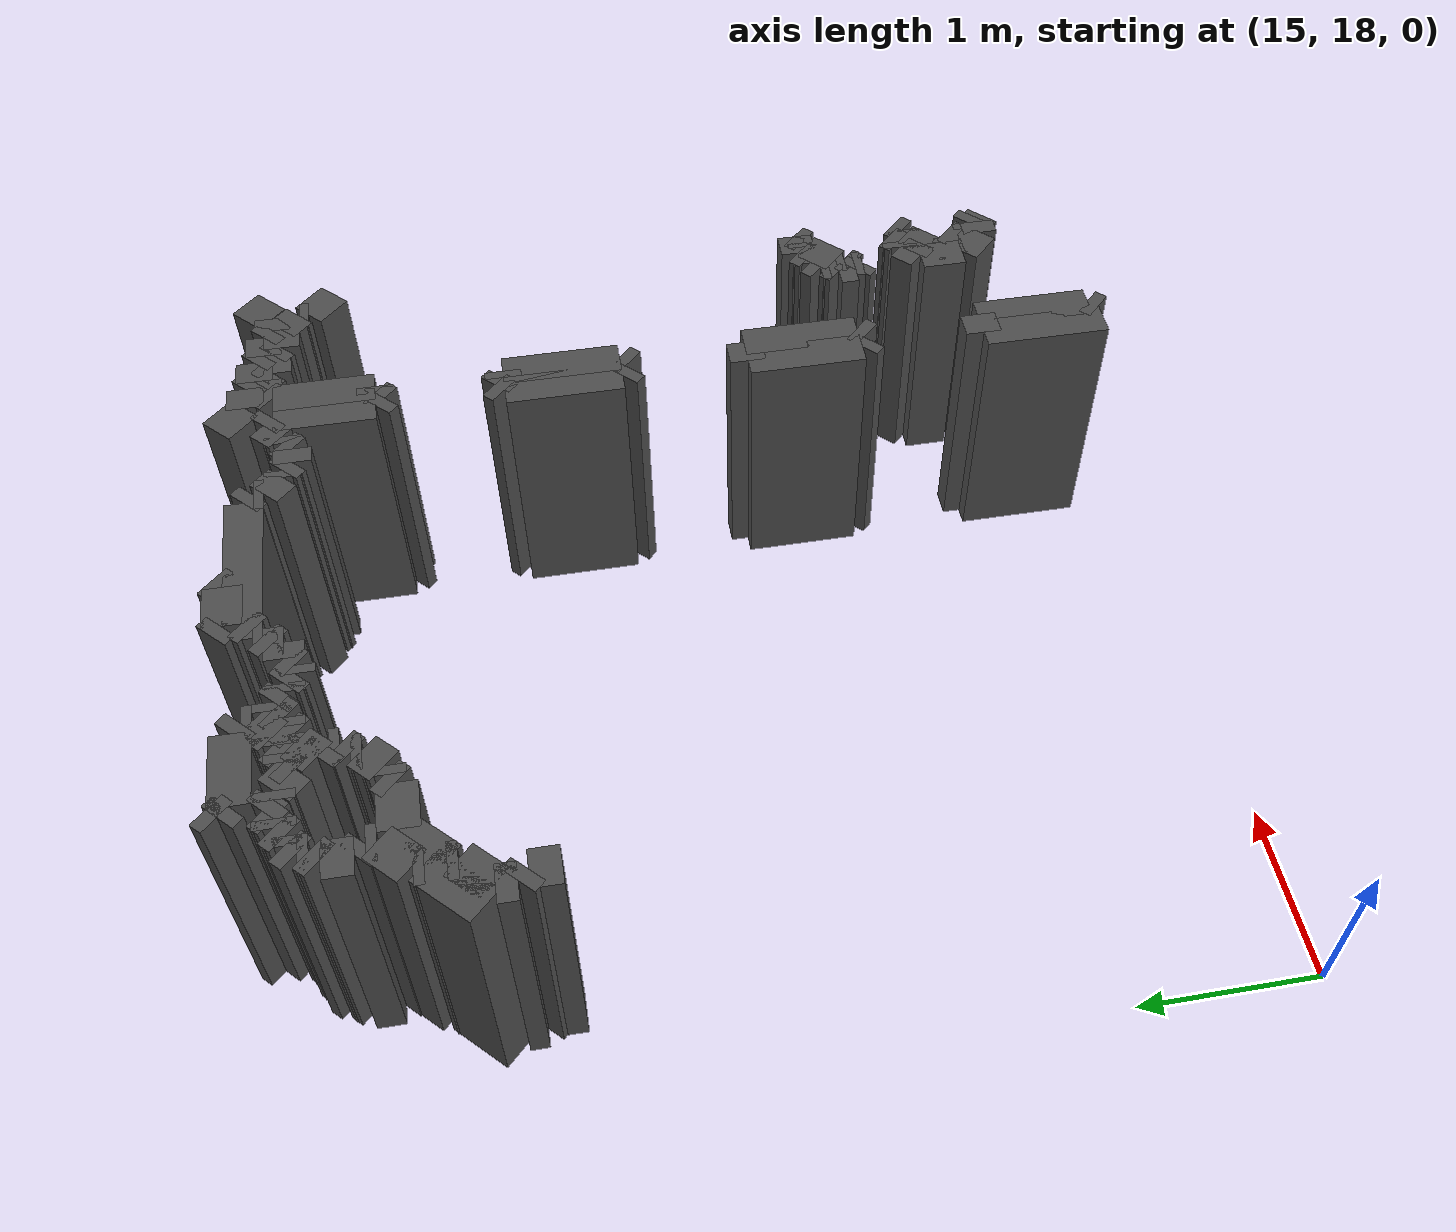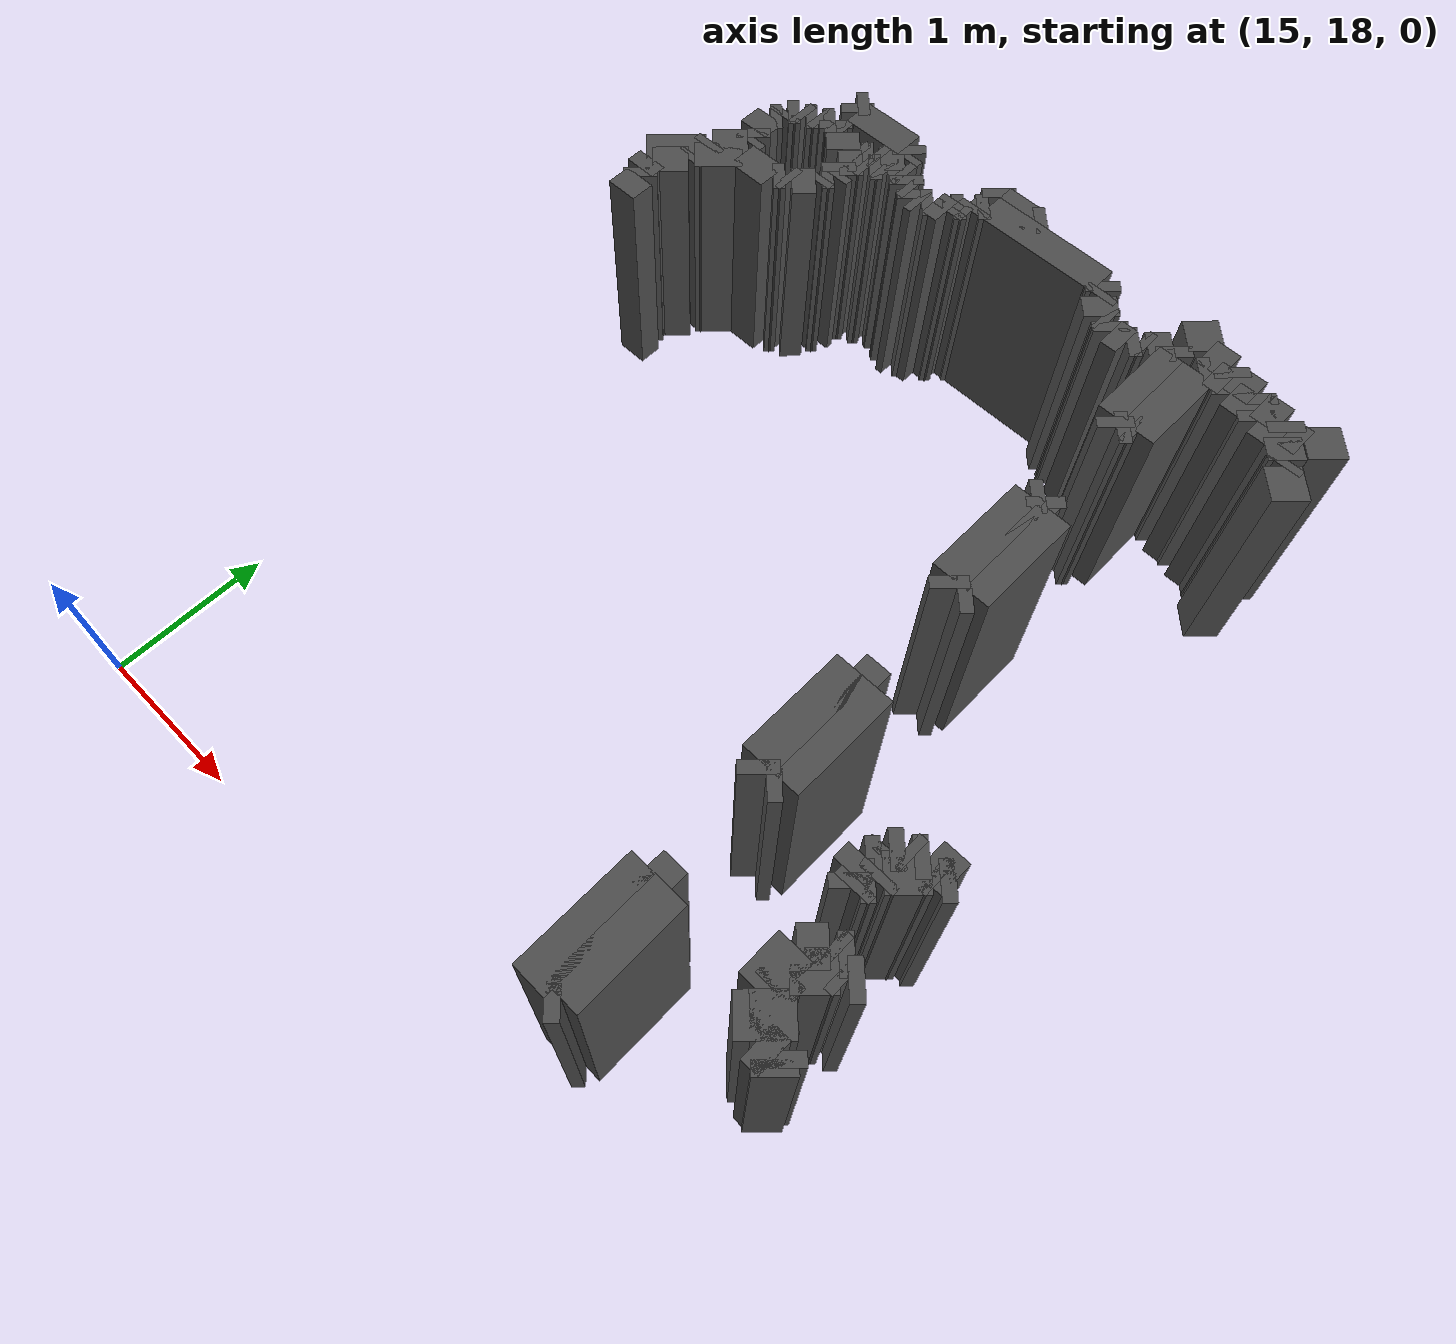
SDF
<sdf version="1.9">
 <model name="generated_walls">
  <static>true</static>
  <link name="wall_86_0">
   <pose>18.475 21.075 0.75 0 0 2.356</pose>
   <collision name="collision"><geometry><box><size>0.071 0.2 1.5</size></box></geometry></collision>
   <visual name="visual">
    <geometry><box><size>0.071 0.2 1.5</size></box></geometry>
    <material><ambient>0.3 0.3 0.3 1</ambient></material>
   </visual>
  </link>
  <link name="wall_86_1">
   <pose>18.450 21.425 0.75 0 0 1.571</pose>
   <collision name="collision"><geometry><box><size>0.650 0.2 1.5</size></box></geometry></collision>
   <visual name="visual">
    <geometry><box><size>0.650 0.2 1.5</size></box></geometry>
    <material><ambient>0.3 0.3 0.3 1</ambient></material>
   </visual>
  </link>
  <link name="wall_86_2">
   <pose>18.475 21.775 0.75 0 0 0.785</pose>
   <collision name="collision"><geometry><box><size>0.071 0.2 1.5</size></box></geometry></collision>
   <visual name="visual">
    <geometry><box><size>0.071 0.2 1.5</size></box></geometry>
    <material><ambient>0.3 0.3 0.3 1</ambient></material>
   </visual>
  </link>
  <link name="wall_86_3">
   <pose>18.525 21.775 0.75 0 0 -0.785</pose>
   <collision name="collision"><geometry><box><size>0.071 0.2 1.5</size></box></geometry></collision>
   <visual name="visual">
    <geometry><box><size>0.071 0.2 1.5</size></box></geometry>
    <material><ambient>0.3 0.3 0.3 1</ambient></material>
   </visual>
  </link>
  <link name="wall_86_4">
   <pose>18.575 21.750 0.75 0 0 0.000</pose>
   <collision name="collision"><geometry><box><size>0.050 0.2 1.5</size></box></geometry></collision>
   <visual name="visual">
    <geometry><box><size>0.050 0.2 1.5</size></box></geometry>
    <material><ambient>0.3 0.3 0.3 1</ambient></material>
   </visual>
  </link>
  <link name="wall_86_5">
   <pose>18.600 21.425 0.75 0 0 -1.571</pose>
   <collision name="collision"><geometry><box><size>0.650 0.2 1.5</size></box></geometry></collision>
   <visual name="visual">
    <geometry><box><size>0.650 0.2 1.5</size></box></geometry>
    <material><ambient>0.3 0.3 0.3 1</ambient></material>
   </visual>
  </link>
  <link name="wall_86_6">
   <pose>18.575 21.075 0.75 0 0 -2.356</pose>
   <collision name="collision"><geometry><box><size>0.071 0.2 1.5</size></box></geometry></collision>
   <visual name="visual">
    <geometry><box><size>0.071 0.2 1.5</size></box></geometry>
    <material><ambient>0.3 0.3 0.3 1</ambient></material>
   </visual>
  </link>
  <link name="wall_96_0">
   <pose>18.475 19.725 0.75 0 0 2.356</pose>
   <collision name="collision"><geometry><box><size>0.071 0.2 1.5</size></box></geometry></collision>
   <visual name="visual">
    <geometry><box><size>0.071 0.2 1.5</size></box></geometry>
    <material><ambient>0.3 0.3 0.3 1</ambient></material>
   </visual>
  </link>
  <link name="wall_96_1">
   <pose>18.450 20.075 0.75 0 0 1.571</pose>
   <collision name="collision"><geometry><box><size>0.650 0.2 1.5</size></box></geometry></collision>
   <visual name="visual">
    <geometry><box><size>0.650 0.2 1.5</size></box></geometry>
    <material><ambient>0.3 0.3 0.3 1</ambient></material>
   </visual>
  </link>
  <link name="wall_96_2">
   <pose>18.525 20.400 0.75 0 0 0.000</pose>
   <collision name="collision"><geometry><box><size>0.150 0.2 1.5</size></box></geometry></collision>
   <visual name="visual">
    <geometry><box><size>0.150 0.2 1.5</size></box></geometry>
    <material><ambient>0.3 0.3 0.3 1</ambient></material>
   </visual>
  </link>
  <link name="wall_96_3">
   <pose>18.600 20.075 0.75 0 0 -1.571</pose>
   <collision name="collision"><geometry><box><size>0.650 0.2 1.5</size></box></geometry></collision>
   <visual name="visual">
    <geometry><box><size>0.650 0.2 1.5</size></box></geometry>
    <material><ambient>0.3 0.3 0.3 1</ambient></material>
   </visual>
  </link>
  <link name="wall_96_4">
   <pose>18.575 19.725 0.75 0 0 -2.356</pose>
   <collision name="collision"><geometry><box><size>0.071 0.2 1.5</size></box></geometry></collision>
   <visual name="visual">
    <geometry><box><size>0.071 0.2 1.5</size></box></geometry>
    <material><ambient>0.3 0.3 0.3 1</ambient></material>
   </visual>
  </link>
  <link name="wall_111_0">
   <pose>19.425 18.825 0.75 0 0 2.356</pose>
   <collision name="collision"><geometry><box><size>0.071 0.2 1.5</size></box></geometry></collision>
   <visual name="visual">
    <geometry><box><size>0.071 0.2 1.5</size></box></geometry>
    <material><ambient>0.3 0.3 0.3 1</ambient></material>
   </visual>
  </link>
  <link name="wall_111_1">
   <pose>19.350 18.850 0.75 0 0 3.142</pose>
   <collision name="collision"><geometry><box><size>0.100 0.2 1.5</size></box></geometry></collision>
   <visual name="visual">
    <geometry><box><size>0.100 0.2 1.5</size></box></geometry>
    <material><ambient>0.3 0.3 0.3 1</ambient></material>
   </visual>
  </link>
  <link name="wall_111_2">
   <pose>19.225 18.925 0.75 0 0 2.356</pose>
   <collision name="collision"><geometry><box><size>0.212 0.2 1.5</size></box></geometry></collision>
   <visual name="visual">
    <geometry><box><size>0.212 0.2 1.5</size></box></geometry>
    <material><ambient>0.3 0.3 0.3 1</ambient></material>
   </visual>
  </link>
  <link name="wall_111_3">
   <pose>19.150 19.125 0.75 0 0 1.571</pose>
   <collision name="collision"><geometry><box><size>0.250 0.2 1.5</size></box></geometry></collision>
   <visual name="visual">
    <geometry><box><size>0.250 0.2 1.5</size></box></geometry>
    <material><ambient>0.3 0.3 0.3 1</ambient></material>
   </visual>
  </link>
  <link name="wall_111_4">
   <pose>19.200 19.300 0.75 0 0 0.785</pose>
   <collision name="collision"><geometry><box><size>0.141 0.2 1.5</size></box></geometry></collision>
   <visual name="visual">
    <geometry><box><size>0.141 0.2 1.5</size></box></geometry>
    <material><ambient>0.3 0.3 0.3 1</ambient></material>
   </visual>
  </link>
  <link name="wall_111_5">
   <pose>19.275 19.350 0.75 0 0 0.000</pose>
   <collision name="collision"><geometry><box><size>0.050 0.2 1.5</size></box></geometry></collision>
   <visual name="visual">
    <geometry><box><size>0.050 0.2 1.5</size></box></geometry>
    <material><ambient>0.3 0.3 0.3 1</ambient></material>
   </visual>
  </link>
  <link name="wall_111_6">
   <pose>19.325 19.375 0.75 0 0 0.785</pose>
   <collision name="collision"><geometry><box><size>0.071 0.2 1.5</size></box></geometry></collision>
   <visual name="visual">
    <geometry><box><size>0.071 0.2 1.5</size></box></geometry>
    <material><ambient>0.3 0.3 0.3 1</ambient></material>
   </visual>
  </link>
  <link name="wall_111_18">
   <pose>19.425 19.925 0.75 0 0 -2.356</pose>
   <collision name="collision"><geometry><box><size>0.071 0.2 1.5</size></box></geometry></collision>
   <visual name="visual">
    <geometry><box><size>0.071 0.2 1.5</size></box></geometry>
    <material><ambient>0.3 0.3 0.3 1</ambient></material>
   </visual>
  </link>
  <link name="wall_111_19">
   <pose>19.375 19.900 0.75 0 0 3.142</pose>
   <collision name="collision"><geometry><box><size>0.050 0.2 1.5</size></box></geometry></collision>
   <visual name="visual">
    <geometry><box><size>0.050 0.2 1.5</size></box></geometry>
    <material><ambient>0.3 0.3 0.3 1</ambient></material>
   </visual>
  </link>
  <link name="wall_111_20">
   <pose>19.275 19.825 0.75 0 0 -2.356</pose>
   <collision name="collision"><geometry><box><size>0.212 0.2 1.5</size></box></geometry></collision>
   <visual name="visual">
    <geometry><box><size>0.212 0.2 1.5</size></box></geometry>
    <material><ambient>0.3 0.3 0.3 1</ambient></material>
   </visual>
  </link>
  <link name="wall_111_21">
   <pose>19.200 19.725 0.75 0 0 -1.571</pose>
   <collision name="collision"><geometry><box><size>0.050 0.2 1.5</size></box></geometry></collision>
   <visual name="visual">
    <geometry><box><size>0.050 0.2 1.5</size></box></geometry>
    <material><ambient>0.3 0.3 0.3 1</ambient></material>
   </visual>
  </link>
  <link name="wall_111_22">
   <pose>19.175 19.675 0.75 0 0 -2.356</pose>
   <collision name="collision"><geometry><box><size>0.071 0.2 1.5</size></box></geometry></collision>
   <visual name="visual">
    <geometry><box><size>0.071 0.2 1.5</size></box></geometry>
    <material><ambient>0.3 0.3 0.3 1</ambient></material>
   </visual>
  </link>
  <link name="wall_111_23">
   <pose>19.150 19.625 0.75 0 0 -1.571</pose>
   <collision name="collision"><geometry><box><size>0.050 0.2 1.5</size></box></geometry></collision>
   <visual name="visual">
    <geometry><box><size>0.050 0.2 1.5</size></box></geometry>
    <material><ambient>0.3 0.3 0.3 1</ambient></material>
   </visual>
  </link>
  <link name="wall_111_24">
   <pose>19.125 19.625 0.75 0 0 2.356</pose>
   <collision name="collision"><geometry><box><size>0.071 0.2 1.5</size></box></geometry></collision>
   <visual name="visual">
    <geometry><box><size>0.071 0.2 1.5</size></box></geometry>
    <material><ambient>0.3 0.3 0.3 1</ambient></material>
   </visual>
  </link>
  <link name="wall_111_25">
   <pose>19.100 19.700 0.75 0 0 1.571</pose>
   <collision name="collision"><geometry><box><size>0.100 0.2 1.5</size></box></geometry></collision>
   <visual name="visual">
    <geometry><box><size>0.100 0.2 1.5</size></box></geometry>
    <material><ambient>0.3 0.3 0.3 1</ambient></material>
   </visual>
  </link>
  <link name="wall_111_26">
   <pose>19.125 19.775 0.75 0 0 0.785</pose>
   <collision name="collision"><geometry><box><size>0.071 0.2 1.5</size></box></geometry></collision>
   <visual name="visual">
    <geometry><box><size>0.071 0.2 1.5</size></box></geometry>
    <material><ambient>0.3 0.3 0.3 1</ambient></material>
   </visual>
  </link>
  <link name="wall_111_27">
   <pose>19.150 19.825 0.75 0 0 1.571</pose>
   <collision name="collision"><geometry><box><size>0.050 0.2 1.5</size></box></geometry></collision>
   <visual name="visual">
    <geometry><box><size>0.050 0.2 1.5</size></box></geometry>
    <material><ambient>0.3 0.3 0.3 1</ambient></material>
   </visual>
  </link>
  <link name="wall_111_28">
   <pose>19.175 19.875 0.75 0 0 0.785</pose>
   <collision name="collision"><geometry><box><size>0.071 0.2 1.5</size></box></geometry></collision>
   <visual name="visual">
    <geometry><box><size>0.071 0.2 1.5</size></box></geometry>
    <material><ambient>0.3 0.3 0.3 1</ambient></material>
   </visual>
  </link>
  <link name="wall_111_29">
   <pose>19.225 19.900 0.75 0 0 0.000</pose>
   <collision name="collision"><geometry><box><size>0.050 0.2 1.5</size></box></geometry></collision>
   <visual name="visual">
    <geometry><box><size>0.050 0.2 1.5</size></box></geometry>
    <material><ambient>0.3 0.3 0.3 1</ambient></material>
   </visual>
  </link>
  <link name="wall_111_30">
   <pose>19.275 19.925 0.75 0 0 0.785</pose>
   <collision name="collision"><geometry><box><size>0.071 0.2 1.5</size></box></geometry></collision>
   <visual name="visual">
    <geometry><box><size>0.071 0.2 1.5</size></box></geometry>
    <material><ambient>0.3 0.3 0.3 1</ambient></material>
   </visual>
  </link>
  <link name="wall_111_31">
   <pose>19.375 19.950 0.75 0 0 0.000</pose>
   <collision name="collision"><geometry><box><size>0.150 0.2 1.5</size></box></geometry></collision>
   <visual name="visual">
    <geometry><box><size>0.150 0.2 1.5</size></box></geometry>
    <material><ambient>0.3 0.3 0.3 1</ambient></material>
   </visual>
  </link>
  <link name="wall_111_47">
   <pose>19.425 19.325 0.75 0 0 -2.356</pose>
   <collision name="collision"><geometry><box><size>0.071 0.2 1.5</size></box></geometry></collision>
   <visual name="visual">
    <geometry><box><size>0.071 0.2 1.5</size></box></geometry>
    <material><ambient>0.3 0.3 0.3 1</ambient></material>
   </visual>
  </link>
  <link name="wall_111_48">
   <pose>19.375 19.300 0.75 0 0 3.142</pose>
   <collision name="collision"><geometry><box><size>0.050 0.2 1.5</size></box></geometry></collision>
   <visual name="visual">
    <geometry><box><size>0.050 0.2 1.5</size></box></geometry>
    <material><ambient>0.3 0.3 0.3 1</ambient></material>
   </visual>
  </link>
  <link name="wall_111_49">
   <pose>19.275 19.225 0.75 0 0 -2.356</pose>
   <collision name="collision"><geometry><box><size>0.212 0.2 1.5</size></box></geometry></collision>
   <visual name="visual">
    <geometry><box><size>0.212 0.2 1.5</size></box></geometry>
    <material><ambient>0.3 0.3 0.3 1</ambient></material>
   </visual>
  </link>
  <link name="wall_111_50">
   <pose>19.200 19.100 0.75 0 0 -1.571</pose>
   <collision name="collision"><geometry><box><size>0.100 0.2 1.5</size></box></geometry></collision>
   <visual name="visual">
    <geometry><box><size>0.100 0.2 1.5</size></box></geometry>
    <material><ambient>0.3 0.3 0.3 1</ambient></material>
   </visual>
  </link>
  <link name="wall_111_51">
   <pose>19.275 18.975 0.75 0 0 -0.785</pose>
   <collision name="collision"><geometry><box><size>0.212 0.2 1.5</size></box></geometry></collision>
   <visual name="visual">
    <geometry><box><size>0.212 0.2 1.5</size></box></geometry>
    <material><ambient>0.3 0.3 0.3 1</ambient></material>
   </visual>
  </link>
  <link name="wall_111_52">
   <pose>19.375 18.900 0.75 0 0 0.000</pose>
   <collision name="collision"><geometry><box><size>0.050 0.2 1.5</size></box></geometry></collision>
   <visual name="visual">
    <geometry><box><size>0.050 0.2 1.5</size></box></geometry>
    <material><ambient>0.3 0.3 0.3 1</ambient></material>
   </visual>
  </link>
  <link name="wall_111_53">
   <pose>19.425 18.875 0.75 0 0 -0.785</pose>
   <collision name="collision"><geometry><box><size>0.071 0.2 1.5</size></box></geometry></collision>
   <visual name="visual">
    <geometry><box><size>0.071 0.2 1.5</size></box></geometry>
    <material><ambient>0.3 0.3 0.3 1</ambient></material>
   </visual>
  </link>
  <link name="wall_113_0">
   <pose>18.450 18.700 0.75 0 0 1.571</pose>
   <collision name="collision"><geometry><box><size>0.700 0.2 1.5</size></box></geometry></collision>
   <visual name="visual">
    <geometry><box><size>0.700 0.2 1.5</size></box></geometry>
    <material><ambient>0.3 0.3 0.3 1</ambient></material>
   </visual>
  </link>
  <link name="wall_113_1">
   <pose>18.525 19.050 0.75 0 0 0.000</pose>
   <collision name="collision"><geometry><box><size>0.150 0.2 1.5</size></box></geometry></collision>
   <visual name="visual">
    <geometry><box><size>0.150 0.2 1.5</size></box></geometry>
    <material><ambient>0.3 0.3 0.3 1</ambient></material>
   </visual>
  </link>
  <link name="wall_113_2">
   <pose>18.600 18.725 0.75 0 0 -1.571</pose>
   <collision name="collision"><geometry><box><size>0.650 0.2 1.5</size></box></geometry></collision>
   <visual name="visual">
    <geometry><box><size>0.650 0.2 1.5</size></box></geometry>
    <material><ambient>0.3 0.3 0.3 1</ambient></material>
   </visual>
  </link>
  <link name="wall_113_3">
   <pose>18.575 18.375 0.75 0 0 -2.356</pose>
   <collision name="collision"><geometry><box><size>0.071 0.2 1.5</size></box></geometry></collision>
   <visual name="visual">
    <geometry><box><size>0.071 0.2 1.5</size></box></geometry>
    <material><ambient>0.3 0.3 0.3 1</ambient></material>
   </visual>
  </link>
  <link name="wall_161_1841">
   <pose>15.425 22.225 0.75 0 0 0.785</pose>
   <collision name="collision"><geometry><box><size>0.354 0.2 1.5</size></box></geometry></collision>
   <visual name="visual">
    <geometry><box><size>0.354 0.2 1.5</size></box></geometry>
    <material><ambient>0.3 0.3 0.3 1</ambient></material>
   </visual>
  </link>
  <link name="wall_161_1842">
   <pose>15.550 22.375 0.75 0 0 1.571</pose>
   <collision name="collision"><geometry><box><size>0.050 0.2 1.5</size></box></geometry></collision>
   <visual name="visual">
    <geometry><box><size>0.050 0.2 1.5</size></box></geometry>
    <material><ambient>0.3 0.3 0.3 1</ambient></material>
   </visual>
  </link>
  <link name="wall_161_1843">
   <pose>15.625 22.475 0.75 0 0 0.785</pose>
   <collision name="collision"><geometry><box><size>0.212 0.2 1.5</size></box></geometry></collision>
   <visual name="visual">
    <geometry><box><size>0.212 0.2 1.5</size></box></geometry>
    <material><ambient>0.3 0.3 0.3 1</ambient></material>
   </visual>
  </link>
  <link name="wall_161_1844">
   <pose>15.700 22.575 0.75 0 0 1.571</pose>
   <collision name="collision"><geometry><box><size>0.050 0.2 1.5</size></box></geometry></collision>
   <visual name="visual">
    <geometry><box><size>0.050 0.2 1.5</size></box></geometry>
    <material><ambient>0.3 0.3 0.3 1</ambient></material>
   </visual>
  </link>
  <link name="wall_161_1845">
   <pose>15.675 22.625 0.75 0 0 2.356</pose>
   <collision name="collision"><geometry><box><size>0.071 0.2 1.5</size></box></geometry></collision>
   <visual name="visual">
    <geometry><box><size>0.071 0.2 1.5</size></box></geometry>
    <material><ambient>0.3 0.3 0.3 1</ambient></material>
   </visual>
  </link>
  <link name="wall_161_1846">
   <pose>15.650 22.725 0.75 0 0 1.571</pose>
   <collision name="collision"><geometry><box><size>0.150 0.2 1.5</size></box></geometry></collision>
   <visual name="visual">
    <geometry><box><size>0.150 0.2 1.5</size></box></geometry>
    <material><ambient>0.3 0.3 0.3 1</ambient></material>
   </visual>
  </link>
  <link name="wall_161_1847">
   <pose>15.675 22.825 0.75 0 0 0.785</pose>
   <collision name="collision"><geometry><box><size>0.071 0.2 1.5</size></box></geometry></collision>
   <visual name="visual">
    <geometry><box><size>0.071 0.2 1.5</size></box></geometry>
    <material><ambient>0.3 0.3 0.3 1</ambient></material>
   </visual>
  </link>
  <link name="wall_161_1848">
   <pose>15.700 22.875 0.75 0 0 1.571</pose>
   <collision name="collision"><geometry><box><size>0.050 0.2 1.5</size></box></geometry></collision>
   <visual name="visual">
    <geometry><box><size>0.050 0.2 1.5</size></box></geometry>
    <material><ambient>0.3 0.3 0.3 1</ambient></material>
   </visual>
  </link>
  <link name="wall_161_1849">
   <pose>15.725 22.925 0.75 0 0 0.785</pose>
   <collision name="collision"><geometry><box><size>0.071 0.2 1.5</size></box></geometry></collision>
   <visual name="visual">
    <geometry><box><size>0.071 0.2 1.5</size></box></geometry>
    <material><ambient>0.3 0.3 0.3 1</ambient></material>
   </visual>
  </link>
  <link name="wall_161_1850">
   <pose>15.775 22.950 0.75 0 0 0.000</pose>
   <collision name="collision"><geometry><box><size>0.050 0.2 1.5</size></box></geometry></collision>
   <visual name="visual">
    <geometry><box><size>0.050 0.2 1.5</size></box></geometry>
    <material><ambient>0.3 0.3 0.3 1</ambient></material>
   </visual>
  </link>
  <link name="wall_161_1851">
   <pose>15.825 22.975 0.75 0 0 0.785</pose>
   <collision name="collision"><geometry><box><size>0.071 0.2 1.5</size></box></geometry></collision>
   <visual name="visual">
    <geometry><box><size>0.071 0.2 1.5</size></box></geometry>
    <material><ambient>0.3 0.3 0.3 1</ambient></material>
   </visual>
  </link>
  <link name="wall_161_1852">
   <pose>15.875 23.000 0.75 0 0 0.000</pose>
   <collision name="collision"><geometry><box><size>0.050 0.2 1.5</size></box></geometry></collision>
   <visual name="visual">
    <geometry><box><size>0.050 0.2 1.5</size></box></geometry>
    <material><ambient>0.3 0.3 0.3 1</ambient></material>
   </visual>
  </link>
  <link name="wall_161_1853">
   <pose>15.925 23.025 0.75 0 0 0.785</pose>
   <collision name="collision"><geometry><box><size>0.071 0.2 1.5</size></box></geometry></collision>
   <visual name="visual">
    <geometry><box><size>0.071 0.2 1.5</size></box></geometry>
    <material><ambient>0.3 0.3 0.3 1</ambient></material>
   </visual>
  </link>
  <link name="wall_161_1854">
   <pose>15.975 23.025 0.75 0 0 -0.785</pose>
   <collision name="collision"><geometry><box><size>0.071 0.2 1.5</size></box></geometry></collision>
   <visual name="visual">
    <geometry><box><size>0.071 0.2 1.5</size></box></geometry>
    <material><ambient>0.3 0.3 0.3 1</ambient></material>
   </visual>
  </link>
  <link name="wall_161_1855">
   <pose>16.025 23.000 0.75 0 0 0.000</pose>
   <collision name="collision"><geometry><box><size>0.050 0.2 1.5</size></box></geometry></collision>
   <visual name="visual">
    <geometry><box><size>0.050 0.2 1.5</size></box></geometry>
    <material><ambient>0.3 0.3 0.3 1</ambient></material>
   </visual>
  </link>
  <link name="wall_161_1856">
   <pose>16.100 22.950 0.75 0 0 -0.785</pose>
   <collision name="collision"><geometry><box><size>0.141 0.2 1.5</size></box></geometry></collision>
   <visual name="visual">
    <geometry><box><size>0.141 0.2 1.5</size></box></geometry>
    <material><ambient>0.3 0.3 0.3 1</ambient></material>
   </visual>
  </link>
  <link name="wall_161_1857">
   <pose>16.175 22.925 0.75 0 0 0.785</pose>
   <collision name="collision"><geometry><box><size>0.071 0.2 1.5</size></box></geometry></collision>
   <visual name="visual">
    <geometry><box><size>0.071 0.2 1.5</size></box></geometry>
    <material><ambient>0.3 0.3 0.3 1</ambient></material>
   </visual>
  </link>
  <link name="wall_161_1858">
   <pose>16.225 22.950 0.75 0 0 0.000</pose>
   <collision name="collision"><geometry><box><size>0.050 0.2 1.5</size></box></geometry></collision>
   <visual name="visual">
    <geometry><box><size>0.050 0.2 1.5</size></box></geometry>
    <material><ambient>0.3 0.3 0.3 1</ambient></material>
   </visual>
  </link>
  <link name="wall_161_1859">
   <pose>16.275 22.975 0.75 0 0 0.785</pose>
   <collision name="collision"><geometry><box><size>0.071 0.2 1.5</size></box></geometry></collision>
   <visual name="visual">
    <geometry><box><size>0.071 0.2 1.5</size></box></geometry>
    <material><ambient>0.3 0.3 0.3 1</ambient></material>
   </visual>
  </link>
  <link name="wall_161_1860">
   <pose>16.325 23.000 0.75 0 0 0.000</pose>
   <collision name="collision"><geometry><box><size>0.050 0.2 1.5</size></box></geometry></collision>
   <visual name="visual">
    <geometry><box><size>0.050 0.2 1.5</size></box></geometry>
    <material><ambient>0.3 0.3 0.3 1</ambient></material>
   </visual>
  </link>
  <link name="wall_161_1861">
   <pose>16.400 23.050 0.75 0 0 0.785</pose>
   <collision name="collision"><geometry><box><size>0.141 0.2 1.5</size></box></geometry></collision>
   <visual name="visual">
    <geometry><box><size>0.141 0.2 1.5</size></box></geometry>
    <material><ambient>0.3 0.3 0.3 1</ambient></material>
   </visual>
  </link>
  <link name="wall_161_1862">
   <pose>16.450 23.125 0.75 0 0 1.571</pose>
   <collision name="collision"><geometry><box><size>0.050 0.2 1.5</size></box></geometry></collision>
   <visual name="visual">
    <geometry><box><size>0.050 0.2 1.5</size></box></geometry>
    <material><ambient>0.3 0.3 0.3 1</ambient></material>
   </visual>
  </link>
  <link name="wall_161_1863">
   <pose>16.425 23.175 0.75 0 0 2.356</pose>
   <collision name="collision"><geometry><box><size>0.071 0.2 1.5</size></box></geometry></collision>
   <visual name="visual">
    <geometry><box><size>0.071 0.2 1.5</size></box></geometry>
    <material><ambient>0.3 0.3 0.3 1</ambient></material>
   </visual>
  </link>
  <link name="wall_161_1864">
   <pose>16.200 23.200 0.75 0 0 3.142</pose>
   <collision name="collision"><geometry><box><size>0.400 0.2 1.5</size></box></geometry></collision>
   <visual name="visual">
    <geometry><box><size>0.400 0.2 1.5</size></box></geometry>
    <material><ambient>0.3 0.3 0.3 1</ambient></material>
   </visual>
  </link>
  <link name="wall_161_1865">
   <pose>15.975 23.225 0.75 0 0 2.356</pose>
   <collision name="collision"><geometry><box><size>0.071 0.2 1.5</size></box></geometry></collision>
   <visual name="visual">
    <geometry><box><size>0.071 0.2 1.5</size></box></geometry>
    <material><ambient>0.3 0.3 0.3 1</ambient></material>
   </visual>
  </link>
  <link name="wall_161_1866">
   <pose>15.975 23.275 0.75 0 0 0.785</pose>
   <collision name="collision"><geometry><box><size>0.071 0.2 1.5</size></box></geometry></collision>
   <visual name="visual">
    <geometry><box><size>0.071 0.2 1.5</size></box></geometry>
    <material><ambient>0.3 0.3 0.3 1</ambient></material>
   </visual>
  </link>
  <link name="wall_161_1879">
   <pose>17.025 23.275 0.75 0 0 -0.785</pose>
   <collision name="collision"><geometry><box><size>0.071 0.2 1.5</size></box></geometry></collision>
   <visual name="visual">
    <geometry><box><size>0.071 0.2 1.5</size></box></geometry>
    <material><ambient>0.3 0.3 0.3 1</ambient></material>
   </visual>
  </link>
  <link name="wall_161_1880">
   <pose>17.175 23.250 0.75 0 0 0.000</pose>
   <collision name="collision"><geometry><box><size>0.250 0.2 1.5</size></box></geometry></collision>
   <visual name="visual">
    <geometry><box><size>0.250 0.2 1.5</size></box></geometry>
    <material><ambient>0.3 0.3 0.3 1</ambient></material>
   </visual>
  </link>
  <link name="wall_161_1881">
   <pose>17.325 23.275 0.75 0 0 0.785</pose>
   <collision name="collision"><geometry><box><size>0.071 0.2 1.5</size></box></geometry></collision>
   <visual name="visual">
    <geometry><box><size>0.071 0.2 1.5</size></box></geometry>
    <material><ambient>0.3 0.3 0.3 1</ambient></material>
   </visual>
  </link>
  <link name="wall_161_1893">
   <pose>18.475 23.225 0.75 0 0 -0.785</pose>
   <collision name="collision"><geometry><box><size>0.212 0.2 1.5</size></box></geometry></collision>
   <visual name="visual">
    <geometry><box><size>0.212 0.2 1.5</size></box></geometry>
    <material><ambient>0.3 0.3 0.3 1</ambient></material>
   </visual>
  </link>
  <link name="wall_161_1894">
   <pose>18.625 23.150 0.75 0 0 0.000</pose>
   <collision name="collision"><geometry><box><size>0.150 0.2 1.5</size></box></geometry></collision>
   <visual name="visual">
    <geometry><box><size>0.150 0.2 1.5</size></box></geometry>
    <material><ambient>0.3 0.3 0.3 1</ambient></material>
   </visual>
  </link>
  <link name="wall_161_1895">
   <pose>18.725 23.125 0.75 0 0 -0.785</pose>
   <collision name="collision"><geometry><box><size>0.071 0.2 1.5</size></box></geometry></collision>
   <visual name="visual">
    <geometry><box><size>0.071 0.2 1.5</size></box></geometry>
    <material><ambient>0.3 0.3 0.3 1</ambient></material>
   </visual>
  </link>
  <link name="wall_161_1896">
   <pose>18.825 23.100 0.75 0 0 0.000</pose>
   <collision name="collision"><geometry><box><size>0.150 0.2 1.5</size></box></geometry></collision>
   <visual name="visual">
    <geometry><box><size>0.150 0.2 1.5</size></box></geometry>
    <material><ambient>0.3 0.3 0.3 1</ambient></material>
   </visual>
  </link>
  <link name="wall_161_1897">
   <pose>18.925 23.075 0.75 0 0 -0.785</pose>
   <collision name="collision"><geometry><box><size>0.071 0.2 1.5</size></box></geometry></collision>
   <visual name="visual">
    <geometry><box><size>0.071 0.2 1.5</size></box></geometry>
    <material><ambient>0.3 0.3 0.3 1</ambient></material>
   </visual>
  </link>
  <link name="wall_161_1898">
   <pose>19.025 23.050 0.75 0 0 0.000</pose>
   <collision name="collision"><geometry><box><size>0.150 0.2 1.5</size></box></geometry></collision>
   <visual name="visual">
    <geometry><box><size>0.150 0.2 1.5</size></box></geometry>
    <material><ambient>0.3 0.3 0.3 1</ambient></material>
   </visual>
  </link>
  <link name="wall_161_1899">
   <pose>19.125 23.025 0.75 0 0 -0.785</pose>
   <collision name="collision"><geometry><box><size>0.071 0.2 1.5</size></box></geometry></collision>
   <visual name="visual">
    <geometry><box><size>0.071 0.2 1.5</size></box></geometry>
    <material><ambient>0.3 0.3 0.3 1</ambient></material>
   </visual>
  </link>
  <link name="wall_161_1900">
   <pose>19.200 23.000 0.75 0 0 0.000</pose>
   <collision name="collision"><geometry><box><size>0.100 0.2 1.5</size></box></geometry></collision>
   <visual name="visual">
    <geometry><box><size>0.100 0.2 1.5</size></box></geometry>
    <material><ambient>0.3 0.3 0.3 1</ambient></material>
   </visual>
  </link>
  <link name="wall_161_1901">
   <pose>19.325 23.075 0.75 0 0 0.785</pose>
   <collision name="collision"><geometry><box><size>0.212 0.2 1.5</size></box></geometry></collision>
   <visual name="visual">
    <geometry><box><size>0.212 0.2 1.5</size></box></geometry>
    <material><ambient>0.3 0.3 0.3 1</ambient></material>
   </visual>
  </link>
  <link name="wall_161_2288">
   <pose>19.325 22.725 0.75 0 0 2.356</pose>
   <collision name="collision"><geometry><box><size>0.212 0.2 1.5</size></box></geometry></collision>
   <visual name="visual">
    <geometry><box><size>0.212 0.2 1.5</size></box></geometry>
    <material><ambient>0.3 0.3 0.3 1</ambient></material>
   </visual>
  </link>
  <link name="wall_161_2289">
   <pose>19.250 22.825 0.75 0 0 1.571</pose>
   <collision name="collision"><geometry><box><size>0.050 0.2 1.5</size></box></geometry></collision>
   <visual name="visual">
    <geometry><box><size>0.050 0.2 1.5</size></box></geometry>
    <material><ambient>0.3 0.3 0.3 1</ambient></material>
   </visual>
  </link>
  <link name="wall_161_2290">
   <pose>19.200 22.900 0.75 0 0 2.356</pose>
   <collision name="collision"><geometry><box><size>0.141 0.2 1.5</size></box></geometry></collision>
   <visual name="visual">
    <geometry><box><size>0.141 0.2 1.5</size></box></geometry>
    <material><ambient>0.3 0.3 0.3 1</ambient></material>
   </visual>
  </link>
  <link name="wall_161_2291">
   <pose>19.075 22.950 0.75 0 0 3.142</pose>
   <collision name="collision"><geometry><box><size>0.150 0.2 1.5</size></box></geometry></collision>
   <visual name="visual">
    <geometry><box><size>0.150 0.2 1.5</size></box></geometry>
    <material><ambient>0.3 0.3 0.3 1</ambient></material>
   </visual>
  </link>
  <link name="wall_161_2292">
   <pose>18.975 22.975 0.75 0 0 2.356</pose>
   <collision name="collision"><geometry><box><size>0.071 0.2 1.5</size></box></geometry></collision>
   <visual name="visual">
    <geometry><box><size>0.071 0.2 1.5</size></box></geometry>
    <material><ambient>0.3 0.3 0.3 1</ambient></material>
   </visual>
  </link>
  <link name="wall_161_2293">
   <pose>18.875 23.000 0.75 0 0 3.142</pose>
   <collision name="collision"><geometry><box><size>0.150 0.2 1.5</size></box></geometry></collision>
   <visual name="visual">
    <geometry><box><size>0.150 0.2 1.5</size></box></geometry>
    <material><ambient>0.3 0.3 0.3 1</ambient></material>
   </visual>
  </link>
  <link name="wall_161_2294">
   <pose>18.775 23.025 0.75 0 0 2.356</pose>
   <collision name="collision"><geometry><box><size>0.071 0.2 1.5</size></box></geometry></collision>
   <visual name="visual">
    <geometry><box><size>0.071 0.2 1.5</size></box></geometry>
    <material><ambient>0.3 0.3 0.3 1</ambient></material>
   </visual>
  </link>
  <link name="wall_161_2295">
   <pose>18.700 23.050 0.75 0 0 3.142</pose>
   <collision name="collision"><geometry><box><size>0.100 0.2 1.5</size></box></geometry></collision>
   <visual name="visual">
    <geometry><box><size>0.100 0.2 1.5</size></box></geometry>
    <material><ambient>0.3 0.3 0.3 1</ambient></material>
   </visual>
  </link>
  <link name="wall_161_2296">
   <pose>18.625 23.025 0.75 0 0 -2.356</pose>
   <collision name="collision"><geometry><box><size>0.071 0.2 1.5</size></box></geometry></collision>
   <visual name="visual">
    <geometry><box><size>0.071 0.2 1.5</size></box></geometry>
    <material><ambient>0.3 0.3 0.3 1</ambient></material>
   </visual>
  </link>
  <link name="wall_161_2297">
   <pose>18.600 22.725 0.75 0 0 -1.571</pose>
   <collision name="collision"><geometry><box><size>0.550 0.2 1.5</size></box></geometry></collision>
   <visual name="visual">
    <geometry><box><size>0.550 0.2 1.5</size></box></geometry>
    <material><ambient>0.3 0.3 0.3 1</ambient></material>
   </visual>
  </link>
  <link name="wall_161_2298">
   <pose>18.575 22.450 0.75 0 0 3.142</pose>
   <collision name="collision"><geometry><box><size>0.050 0.2 1.5</size></box></geometry></collision>
   <visual name="visual">
    <geometry><box><size>0.050 0.2 1.5</size></box></geometry>
    <material><ambient>0.3 0.3 0.3 1</ambient></material>
   </visual>
  </link>
  <link name="wall_161_2299">
   <pose>18.525 22.425 0.75 0 0 -2.356</pose>
   <collision name="collision"><geometry><box><size>0.071 0.2 1.5</size></box></geometry></collision>
   <visual name="visual">
    <geometry><box><size>0.071 0.2 1.5</size></box></geometry>
    <material><ambient>0.3 0.3 0.3 1</ambient></material>
   </visual>
  </link>
  <link name="wall_161_2300">
   <pose>18.475 22.425 0.75 0 0 2.356</pose>
   <collision name="collision"><geometry><box><size>0.071 0.2 1.5</size></box></geometry></collision>
   <visual name="visual">
    <geometry><box><size>0.071 0.2 1.5</size></box></geometry>
    <material><ambient>0.3 0.3 0.3 1</ambient></material>
   </visual>
  </link>
  <link name="wall_161_2301">
   <pose>18.450 22.725 0.75 0 0 1.571</pose>
   <collision name="collision"><geometry><box><size>0.550 0.2 1.5</size></box></geometry></collision>
   <visual name="visual">
    <geometry><box><size>0.550 0.2 1.5</size></box></geometry>
    <material><ambient>0.3 0.3 0.3 1</ambient></material>
   </visual>
  </link>
  <link name="wall_161_2302">
   <pose>18.425 23.025 0.75 0 0 2.356</pose>
   <collision name="collision"><geometry><box><size>0.071 0.2 1.5</size></box></geometry></collision>
   <visual name="visual">
    <geometry><box><size>0.071 0.2 1.5</size></box></geometry>
    <material><ambient>0.3 0.3 0.3 1</ambient></material>
   </visual>
  </link>
  <link name="wall_161_2303">
   <pose>18.350 23.000 0.75 0 0 -2.356</pose>
   <collision name="collision"><geometry><box><size>0.141 0.2 1.5</size></box></geometry></collision>
   <visual name="visual">
    <geometry><box><size>0.141 0.2 1.5</size></box></geometry>
    <material><ambient>0.3 0.3 0.3 1</ambient></material>
   </visual>
  </link>
  <link name="wall_161_2304">
   <pose>18.275 22.950 0.75 0 0 3.142</pose>
   <collision name="collision"><geometry><box><size>0.050 0.2 1.5</size></box></geometry></collision>
   <visual name="visual">
    <geometry><box><size>0.050 0.2 1.5</size></box></geometry>
    <material><ambient>0.3 0.3 0.3 1</ambient></material>
   </visual>
  </link>
  <link name="wall_161_2305">
   <pose>18.225 22.925 0.75 0 0 -2.356</pose>
   <collision name="collision"><geometry><box><size>0.071 0.2 1.5</size></box></geometry></collision>
   <visual name="visual">
    <geometry><box><size>0.071 0.2 1.5</size></box></geometry>
    <material><ambient>0.3 0.3 0.3 1</ambient></material>
   </visual>
  </link>
  <link name="wall_161_2306">
   <pose>18.150 22.900 0.75 0 0 3.142</pose>
   <collision name="collision"><geometry><box><size>0.100 0.2 1.5</size></box></geometry></collision>
   <visual name="visual">
    <geometry><box><size>0.100 0.2 1.5</size></box></geometry>
    <material><ambient>0.3 0.3 0.3 1</ambient></material>
   </visual>
  </link>
  <link name="wall_161_2307">
   <pose>18.075 22.925 0.75 0 0 2.356</pose>
   <collision name="collision"><geometry><box><size>0.071 0.2 1.5</size></box></geometry></collision>
   <visual name="visual">
    <geometry><box><size>0.071 0.2 1.5</size></box></geometry>
    <material><ambient>0.3 0.3 0.3 1</ambient></material>
   </visual>
  </link>
  <link name="wall_161_2308">
   <pose>18.025 22.950 0.75 0 0 3.142</pose>
   <collision name="collision"><geometry><box><size>0.050 0.2 1.5</size></box></geometry></collision>
   <visual name="visual">
    <geometry><box><size>0.050 0.2 1.5</size></box></geometry>
    <material><ambient>0.3 0.3 0.3 1</ambient></material>
   </visual>
  </link>
  <link name="wall_161_2309">
   <pose>17.950 23.000 0.75 0 0 2.356</pose>
   <collision name="collision"><geometry><box><size>0.141 0.2 1.5</size></box></geometry></collision>
   <visual name="visual">
    <geometry><box><size>0.141 0.2 1.5</size></box></geometry>
    <material><ambient>0.3 0.3 0.3 1</ambient></material>
   </visual>
  </link>
  <link name="wall_161_2310">
   <pose>17.900 23.075 0.75 0 0 1.571</pose>
   <collision name="collision"><geometry><box><size>0.050 0.2 1.5</size></box></geometry></collision>
   <visual name="visual">
    <geometry><box><size>0.050 0.2 1.5</size></box></geometry>
    <material><ambient>0.3 0.3 0.3 1</ambient></material>
   </visual>
  </link>
  <link name="wall_161_2311">
   <pose>17.875 23.125 0.75 0 0 2.356</pose>
   <collision name="collision"><geometry><box><size>0.071 0.2 1.5</size></box></geometry></collision>
   <visual name="visual">
    <geometry><box><size>0.071 0.2 1.5</size></box></geometry>
    <material><ambient>0.3 0.3 0.3 1</ambient></material>
   </visual>
  </link>
  <link name="wall_161_2312">
   <pose>17.450 23.150 0.75 0 0 3.142</pose>
   <collision name="collision"><geometry><box><size>0.800 0.2 1.5</size></box></geometry></collision>
   <visual name="visual">
    <geometry><box><size>0.800 0.2 1.5</size></box></geometry>
    <material><ambient>0.3 0.3 0.3 1</ambient></material>
   </visual>
  </link>
  <link name="wall_161_2313">
   <pose>17.025 23.125 0.75 0 0 -2.356</pose>
   <collision name="collision"><geometry><box><size>0.071 0.2 1.5</size></box></geometry></collision>
   <visual name="visual">
    <geometry><box><size>0.071 0.2 1.5</size></box></geometry>
    <material><ambient>0.3 0.3 0.3 1</ambient></material>
   </visual>
  </link>
  <link name="wall_161_2314">
   <pose>17.000 23.075 0.75 0 0 -1.571</pose>
   <collision name="collision"><geometry><box><size>0.050 0.2 1.5</size></box></geometry></collision>
   <visual name="visual">
    <geometry><box><size>0.050 0.2 1.5</size></box></geometry>
    <material><ambient>0.3 0.3 0.3 1</ambient></material>
   </visual>
  </link>
  <link name="wall_161_2315">
   <pose>16.975 23.050 0.75 0 0 3.142</pose>
   <collision name="collision"><geometry><box><size>0.050 0.2 1.5</size></box></geometry></collision>
   <visual name="visual">
    <geometry><box><size>0.050 0.2 1.5</size></box></geometry>
    <material><ambient>0.3 0.3 0.3 1</ambient></material>
   </visual>
  </link>
  <link name="wall_161_2316">
   <pose>16.925 23.025 0.75 0 0 -2.356</pose>
   <collision name="collision"><geometry><box><size>0.071 0.2 1.5</size></box></geometry></collision>
   <visual name="visual">
    <geometry><box><size>0.071 0.2 1.5</size></box></geometry>
    <material><ambient>0.3 0.3 0.3 1</ambient></material>
   </visual>
  </link>
  <link name="wall_161_2317">
   <pose>16.900 22.975 0.75 0 0 -1.571</pose>
   <collision name="collision"><geometry><box><size>0.050 0.2 1.5</size></box></geometry></collision>
   <visual name="visual">
    <geometry><box><size>0.050 0.2 1.5</size></box></geometry>
    <material><ambient>0.3 0.3 0.3 1</ambient></material>
   </visual>
  </link>
  <link name="wall_161_2318">
   <pose>16.850 22.950 0.75 0 0 3.142</pose>
   <collision name="collision"><geometry><box><size>0.100 0.2 1.5</size></box></geometry></collision>
   <visual name="visual">
    <geometry><box><size>0.100 0.2 1.5</size></box></geometry>
    <material><ambient>0.3 0.3 0.3 1</ambient></material>
   </visual>
  </link>
  <link name="wall_161_2319">
   <pose>16.775 22.925 0.75 0 0 -2.356</pose>
   <collision name="collision"><geometry><box><size>0.071 0.2 1.5</size></box></geometry></collision>
   <visual name="visual">
    <geometry><box><size>0.071 0.2 1.5</size></box></geometry>
    <material><ambient>0.3 0.3 0.3 1</ambient></material>
   </visual>
  </link>
  <link name="wall_161_2320">
   <pose>16.725 22.900 0.75 0 0 3.142</pose>
   <collision name="collision"><geometry><box><size>0.050 0.2 1.5</size></box></geometry></collision>
   <visual name="visual">
    <geometry><box><size>0.050 0.2 1.5</size></box></geometry>
    <material><ambient>0.3 0.3 0.3 1</ambient></material>
   </visual>
  </link>
  <link name="wall_161_2321">
   <pose>16.675 22.925 0.75 0 0 2.356</pose>
   <collision name="collision"><geometry><box><size>0.071 0.2 1.5</size></box></geometry></collision>
   <visual name="visual">
    <geometry><box><size>0.071 0.2 1.5</size></box></geometry>
    <material><ambient>0.3 0.3 0.3 1</ambient></material>
   </visual>
  </link>
  <link name="wall_161_2322">
   <pose>16.625 22.950 0.75 0 0 3.142</pose>
   <collision name="collision"><geometry><box><size>0.050 0.2 1.5</size></box></geometry></collision>
   <visual name="visual">
    <geometry><box><size>0.050 0.2 1.5</size></box></geometry>
    <material><ambient>0.3 0.3 0.3 1</ambient></material>
   </visual>
  </link>
  <link name="wall_161_2323">
   <pose>16.575 22.975 0.75 0 0 2.356</pose>
   <collision name="collision"><geometry><box><size>0.071 0.2 1.5</size></box></geometry></collision>
   <visual name="visual">
    <geometry><box><size>0.071 0.2 1.5</size></box></geometry>
    <material><ambient>0.3 0.3 0.3 1</ambient></material>
   </visual>
  </link>
  <link name="wall_161_2324">
   <pose>16.525 23.000 0.75 0 0 3.142</pose>
   <collision name="collision"><geometry><box><size>0.050 0.2 1.5</size></box></geometry></collision>
   <visual name="visual">
    <geometry><box><size>0.050 0.2 1.5</size></box></geometry>
    <material><ambient>0.3 0.3 0.3 1</ambient></material>
   </visual>
  </link>
  <link name="wall_161_2325">
   <pose>16.475 22.975 0.75 0 0 -2.356</pose>
   <collision name="collision"><geometry><box><size>0.071 0.2 1.5</size></box></geometry></collision>
   <visual name="visual">
    <geometry><box><size>0.071 0.2 1.5</size></box></geometry>
    <material><ambient>0.3 0.3 0.3 1</ambient></material>
   </visual>
  </link>
  <link name="wall_161_2326">
   <pose>16.425 22.950 0.75 0 0 3.142</pose>
   <collision name="collision"><geometry><box><size>0.050 0.2 1.5</size></box></geometry></collision>
   <visual name="visual">
    <geometry><box><size>0.050 0.2 1.5</size></box></geometry>
    <material><ambient>0.3 0.3 0.3 1</ambient></material>
   </visual>
  </link>
  <link name="wall_161_2327">
   <pose>16.375 22.925 0.75 0 0 -2.356</pose>
   <collision name="collision"><geometry><box><size>0.071 0.2 1.5</size></box></geometry></collision>
   <visual name="visual">
    <geometry><box><size>0.071 0.2 1.5</size></box></geometry>
    <material><ambient>0.3 0.3 0.3 1</ambient></material>
   </visual>
  </link>
  <link name="wall_161_2328">
   <pose>16.325 22.900 0.75 0 0 3.142</pose>
   <collision name="collision"><geometry><box><size>0.050 0.2 1.5</size></box></geometry></collision>
   <visual name="visual">
    <geometry><box><size>0.050 0.2 1.5</size></box></geometry>
    <material><ambient>0.3 0.3 0.3 1</ambient></material>
   </visual>
  </link>
  <link name="wall_161_2329">
   <pose>16.250 22.850 0.75 0 0 -2.356</pose>
   <collision name="collision"><geometry><box><size>0.141 0.2 1.5</size></box></geometry></collision>
   <visual name="visual">
    <geometry><box><size>0.141 0.2 1.5</size></box></geometry>
    <material><ambient>0.3 0.3 0.3 1</ambient></material>
   </visual>
  </link>
  <link name="wall_161_2330">
   <pose>16.225 22.775 0.75 0 0 -0.785</pose>
   <collision name="collision"><geometry><box><size>0.071 0.2 1.5</size></box></geometry></collision>
   <visual name="visual">
    <geometry><box><size>0.071 0.2 1.5</size></box></geometry>
    <material><ambient>0.3 0.3 0.3 1</ambient></material>
   </visual>
  </link>
  <link name="wall_161_2331">
   <pose>16.250 22.725 0.75 0 0 -1.571</pose>
   <collision name="collision"><geometry><box><size>0.050 0.2 1.5</size></box></geometry></collision>
   <visual name="visual">
    <geometry><box><size>0.050 0.2 1.5</size></box></geometry>
    <material><ambient>0.3 0.3 0.3 1</ambient></material>
   </visual>
  </link>
  <link name="wall_161_2332">
   <pose>16.225 22.675 0.75 0 0 -2.356</pose>
   <collision name="collision"><geometry><box><size>0.071 0.2 1.5</size></box></geometry></collision>
   <visual name="visual">
    <geometry><box><size>0.071 0.2 1.5</size></box></geometry>
    <material><ambient>0.3 0.3 0.3 1</ambient></material>
   </visual>
  </link>
  <link name="wall_161_2333">
   <pose>16.200 22.625 0.75 0 0 -1.571</pose>
   <collision name="collision"><geometry><box><size>0.050 0.2 1.5</size></box></geometry></collision>
   <visual name="visual">
    <geometry><box><size>0.050 0.2 1.5</size></box></geometry>
    <material><ambient>0.3 0.3 0.3 1</ambient></material>
   </visual>
  </link>
  <link name="wall_161_2334">
   <pose>16.150 22.550 0.75 0 0 -2.356</pose>
   <collision name="collision"><geometry><box><size>0.141 0.2 1.5</size></box></geometry></collision>
   <visual name="visual">
    <geometry><box><size>0.141 0.2 1.5</size></box></geometry>
    <material><ambient>0.3 0.3 0.3 1</ambient></material>
   </visual>
  </link>
  <link name="wall_161_2335">
   <pose>16.075 22.500 0.75 0 0 3.142</pose>
   <collision name="collision"><geometry><box><size>0.050 0.2 1.5</size></box></geometry></collision>
   <visual name="visual">
    <geometry><box><size>0.050 0.2 1.5</size></box></geometry>
    <material><ambient>0.3 0.3 0.3 1</ambient></material>
   </visual>
  </link>
  <link name="wall_161_2336">
   <pose>16.025 22.475 0.75 0 0 -2.356</pose>
   <collision name="collision"><geometry><box><size>0.071 0.2 1.5</size></box></geometry></collision>
   <visual name="visual">
    <geometry><box><size>0.071 0.2 1.5</size></box></geometry>
    <material><ambient>0.3 0.3 0.3 1</ambient></material>
   </visual>
  </link>
  <link name="wall_161_2337">
   <pose>15.875 22.450 0.75 0 0 3.142</pose>
   <collision name="collision"><geometry><box><size>0.250 0.2 1.5</size></box></geometry></collision>
   <visual name="visual">
    <geometry><box><size>0.250 0.2 1.5</size></box></geometry>
    <material><ambient>0.3 0.3 0.3 1</ambient></material>
   </visual>
  </link>
  <link name="wall_161_2338">
   <pose>15.650 22.350 0.75 0 0 -2.356</pose>
   <collision name="collision"><geometry><box><size>0.283 0.2 1.5</size></box></geometry></collision>
   <visual name="visual">
    <geometry><box><size>0.283 0.2 1.5</size></box></geometry>
    <material><ambient>0.3 0.3 0.3 1</ambient></material>
   </visual>
  </link>
  <link name="wall_161_2339">
   <pose>15.550 22.225 0.75 0 0 -1.571</pose>
   <collision name="collision"><geometry><box><size>0.050 0.2 1.5</size></box></geometry></collision>
   <visual name="visual">
    <geometry><box><size>0.050 0.2 1.5</size></box></geometry>
    <material><ambient>0.3 0.3 0.3 1</ambient></material>
   </visual>
  </link>
  <link name="wall_161_2340">
   <pose>15.475 22.125 0.75 0 0 -2.356</pose>
   <collision name="collision"><geometry><box><size>0.212 0.2 1.5</size></box></geometry></collision>
   <visual name="visual">
    <geometry><box><size>0.212 0.2 1.5</size></box></geometry>
    <material><ambient>0.3 0.3 0.3 1</ambient></material>
   </visual>
  </link>
  <link name="wall_161_2341">
   <pose>15.400 22.000 0.75 0 0 -1.571</pose>
   <collision name="collision"><geometry><box><size>0.100 0.2 1.5</size></box></geometry></collision>
   <visual name="visual">
    <geometry><box><size>0.100 0.2 1.5</size></box></geometry>
    <material><ambient>0.3 0.3 0.3 1</ambient></material>
   </visual>
  </link>
  <link name="wall_161_2342">
   <pose>15.425 21.925 0.75 0 0 -0.785</pose>
   <collision name="collision"><geometry><box><size>0.071 0.2 1.5</size></box></geometry></collision>
   <visual name="visual">
    <geometry><box><size>0.071 0.2 1.5</size></box></geometry>
    <material><ambient>0.3 0.3 0.3 1</ambient></material>
   </visual>
  </link>
  <link name="wall_161_2343">
   <pose>15.450 21.825 0.75 0 0 -1.571</pose>
   <collision name="collision"><geometry><box><size>0.150 0.2 1.5</size></box></geometry></collision>
   <visual name="visual">
    <geometry><box><size>0.150 0.2 1.5</size></box></geometry>
    <material><ambient>0.3 0.3 0.3 1</ambient></material>
   </visual>
  </link>
 </model>
</sdf>
